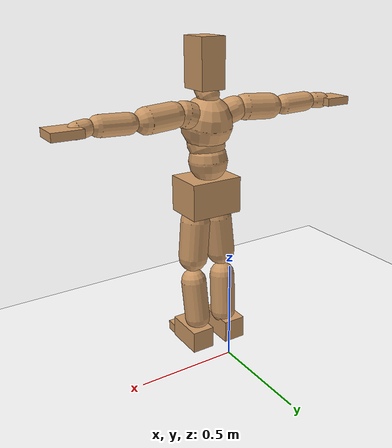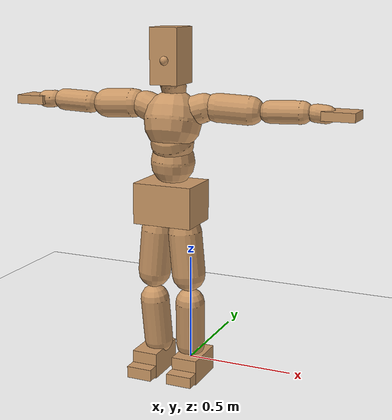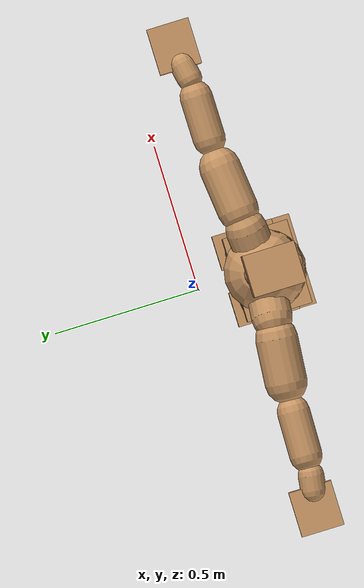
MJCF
<mujoco model="humanoid">
  <option integrator="implicitfast" />

  <visual>
    <global offwidth="1280" offheight="960" />
    <headlight active="1" ambient="0.34 0.34 0.34" diffuse="0.5 0.5 0.5" />
  </visual>

  <default>
    <joint damping="2" stiffness="2" armature="0.01" limited="true" solimplimit="0 .99 .01" />
    <geom condim="1" friction="0.7 0.005 0.0001" solimp=".99 .99 .003" solref="0.015 1" margin="0.001" rgba="0.8 0.6 .4 1" />
    <default class="smplcontact">
      <geom condim="3" friction="1. 0.005 0.0001" solref="0.015 1" solimp="0.98 0.98 0.001" priority="1" />
    </default>
    <default class="stiff_medium">
      <joint stiffness="10" />
    </default>
    <default class="stiff_medium_higher">
      <joint stiffness="50" />
    </default>
    <default class="stiff_high">
      <joint stiffness="100" />
    </default>
  </default>

  <asset>
    <texture type="skybox" builtin="gradient" rgb1="0.99 0.99 0.99" rgb2="0.608 0.828 0.892" width="100" />
    <texture builtin="flat" height="1278" mark="cross" markrgb="1 1 1" name="texgeom" random="0.01" rgb1="0.8 0.6 0.4" rgb2="0.8 0.6 0.4" type="cube" width="127" />
    <texture name="texplane" type="2d" builtin="checker" markrgb="1 1 1" rgb1="0.756 0.772 0.76" rgb2="0.6 0.6 0.6" width="100" height="100" />
    <material name="MatPlane" reflectance="0.5" texture="texplane" texrepeat="1 1" texuniform="true" />
    <material name="geom" texture="texgeom" texuniform="true" />
  </asset>

  <worldbody>
    <light name="tracking_light" pos="0 0 7" dir="0 0 -1" directional="true" cutoff="100" exponent="1" diffuse="1 1 1" specular="0.1 0.1 0.1" mode="trackcom" />
    <camera name="back" pos="0 3 2.4" xyaxes="-1 0 0 0 -1 2" mode="trackcom" />
    <camera name="side" pos="-3 0 2.4" xyaxes="0 -1 0 1 0 2" mode="trackcom" />
    <camera name="front_side" pos="-2.8 -2.8 0.8" xyaxes="0.5 -0.5 0 0.1 0.1 1" mode="trackcom" />
    <geom condim="3" name="floor" pos="0 0 0" rgba="1 1 1 1" size="100 100 .2" type="plane" material="MatPlane" />
    <body name="Pelvis" pos="-0.0018 -0.2233 0.830535" euler="90 0 0">
      <site name="Pelvis" size="0.01" />
      <freejoint name="Pelvis" />
      <geom type="box" pos="-0.0000 -0.0121 -0.0055" size="0.134961 0.0911525 0.104788" quat="1.0000 0.0000 0.0000 0.0000" density="3165.830099" name="Pelvis" />
      <body name="L_Hip" pos="0.0603816 -0.0794083 -0.00590784">
        <joint name="L_Hip_x" type="hinge" pos="0 0 0" axis="1 0 0" stiffness="12.730054659090907" range="-160.0 22.92" class="stiff_medium" damping="18.246935545324636" armature="0.011624307487249798"/>
        <joint name="L_Hip_y" type="hinge" pos="0 0 0" axis="0 1 0" stiffness="12.81121375" range="-70.0 70.0" class="stiff_medium" damping="15.082547182217159" armature="0.01775657123071627"/>
        <joint name="L_Hip_z" type="hinge" pos="0 0 0" axis="0 0 1" stiffness="12.794402840909092" range="-28.65 90.0" class="stiff_medium" damping="12.190302970271997" armature="0.01161472624825243"/>
        <geom type="capsule" density="2040.816327" fromto="0.00599472 -0.06516 -0.00078192 0.0238051 -0.260814 -0.00312768" size="0.0749562" name="L_Hip" />
        <body name="L_Knee" pos="0.0297998 -0.325974 -0.0039096">
          <joint name="L_Knee_x" type="hinge" pos="0 0 0" axis="1 0 0" range="-5.16 171.89" damping="10.288067353896485" armature="0.012447416442484817" stiffness="2.657286613636364"/>
          <joint name="L_Knee_y" type="hinge" pos="0 0 0" axis="0 1 0" range="-4.58 6.88" damping="12.535989799537198" armature="0.018965358207470015" stiffness="2.5894422632135305"/>
          <joint name="L_Knee_z" type="hinge" pos="0 0 0" axis="0 0 1" range="-6.88 4.58" damping="10.30329535323837" armature="0.012397275580091351" stiffness="2.675938113636364"/>
          <geom type="capsule" density="1234.567901" fromto="-0.00234576 -0.0691565 -0.00755856 -0.00946992 -0.276626 -0.030408" size="0.0659371" name="L_Knee" />
          <body name="L_Ankle" pos="-0.0118157 -0.345782 -0.0379666">
            <joint name="L_Ankle_x" type="hinge" pos="0 0 0" axis="1 0 0" range="-45.84 45.84" class="stiff_medium" damping="10.15006569048589" armature="0.018193583883448418" stiffness="15.729573522727271"/>
            <joint name="L_Ankle_y" type="hinge" pos="0 0 0" axis="0 1 0" range="-74.48 22.92" class="stiff_medium" damping="5.119977927913586" armature="0.01851727239653834" stiffness="15.72956284090909"/>
            <joint name="L_Ankle_z" type="hinge" pos="0 0 0" axis="0 0 1" range="-4.58 4.58" class="stiff_medium" damping="10.80999302728728" armature="0.020636307963194236" stiffness="15.729551022727271"/>
            <geom type="box" pos="0.020243 -0.0207643 0.021025" size="0.058868 0.0565523 0.103598" quat="1.0000 0.0000 0.0000 0.0000" density="449.071558" name="L_Ankle" class="smplcontact" />
            <body name="L_Toe" pos="0.0229363 -0.048479 0.103648">
              <joint name="L_Toe_x" type="hinge" pos="0 0 0" axis="1 0 0" range="-91.67 22.92" armature="0.021865073236122932" damping="3.7090612900954496" stiffness="3.1459157500000003"/>
              <joint name="L_Toe_y" type="hinge" pos="0 0 0" axis="0 1 0" range="-4.58 4.58" armature="0.02335082628687281" damping="3.833007451056817" stiffness="3.145915681818182"/>
              <joint name="L_Toe_z" type="hinge" pos="0 0 0" axis="0 0 1" range="-4.58 4.58" armature="0.026354954439327796" damping="4.072111807157371" stiffness="3.145916"/>
              <geom type="box" pos="-0.0026064 0.0047784 0.0215462" size="0.0582586 0.024376 0.0604525" quat="1.0000 0.0000 0.0000 0.0000" density="423.206892" name="L_Toe" class="smplcontact" />
            </body>
          </body>
        </body>
      </body>
      <body name="R_Hip" pos="-0.0588178 -0.0786264 -0.00373584">
        <joint name="R_Hip_x" type="hinge" pos="0 0 0" axis="1 0 0" stiffness="12.730054659090907" range="-160.0 22.92" class="stiff_medium" damping="18.246935545324636" armature="0.011624307487249798"/>
        <joint name="R_Hip_y" type="hinge" pos="0 0 0" axis="0 1 0" stiffness="12.81121375" range="-70.0 70.0" class="stiff_medium" damping="15.082547182217159" armature="0.01775657123071627"/>
        <joint name="R_Hip_z" type="hinge" pos="0 0 0" axis="0 0 1" stiffness="12.794402840909092" range="-90.0 28.65" class="stiff_medium" damping="12.190302970271997" armature="0.01161472624825243"/>
        <geom type="capsule" density="2040.816327" fromto="-0.00668976 -0.0664632 -0.00156384 -0.0265853 -0.26594 -0.00616848" size="0.0738593" name="R_Hip" />
        <body name="R_Knee" pos="-0.033275 -0.332403 -0.00773232">
          <joint name="R_Knee_x" type="hinge" pos="0 0 0" axis="1 0 0" range="-5.16 171.89" damping="10.288067353896485" armature="0.012447416442484817" stiffness="2.657286613636364"/>
          <joint name="R_Knee_y" type="hinge" pos="0 0 0" axis="0 1 0" range="-6.88 4.58" damping="12.535989799537198" armature="0.018965358207470015" stiffness="2.5894422632135305"/>
          <joint name="R_Knee_z" type="hinge" pos="0 0 0" axis="0 0 1" range="-4.58 6.88" damping="10.30329535323837" armature="0.012397275580091351" stiffness="2.675938113636364"/>
          <geom type="capsule" density="1234.567901" fromto="0.00278016 -0.0692434 -0.0073848 0.0109469 -0.276887 -0.0293654" size="0.0659371" name="R_Knee" />
          <body name="R_Ankle" pos="0.013727 -0.34613 -0.0367502">
            <joint name="R_Ankle_x" type="hinge" pos="0 0 0" axis="1 0 0" range="-45.84 45.84" class="stiff_medium" damping="10.15006569048589" armature="0.018193583883448418" stiffness="15.729573522727271"/>
            <joint name="R_Ankle_y" type="hinge" pos="0 0 0" axis="0 1 0" range="-22.92 74.48" class="stiff_medium" damping="5.119977927913586" armature="0.01851727239653834" stiffness="15.72956284090909"/>
            <joint name="R_Ankle_z" type="hinge" pos="0 0 0" axis="0 0 1" range="-4.58 4.58" class="stiff_medium" damping="10.80999302728728" armature="0.020636307963194236" stiffness="15.729551022727271"/>
            <geom type="box" pos="-0.0184186 -0.0151171 0.0222413" size="0.058868 0.0582586 0.105426" quat="1.0000 0.0000 0.0000 0.0000" density="434.700981" name="R_Ankle" class="smplcontact" />
            <body name="R_Toe" pos="-0.0220675 -0.0417893 0.107123">
              <joint name="R_Toe_x" type="hinge" pos="0 0 0" axis="1 0 0" range="-91.67 22.92" armature="0.021865073236122932" damping="3.7090612900954496" stiffness="3.1459157500000003"/>
              <joint name="R_Toe_y" type="hinge" pos="0 0 0" axis="0 1 0" range="-4.58 4.58" armature="0.02335082628687281" damping="3.833007451056817" stiffness="3.145915681818182"/>
              <joint name="R_Toe_z" type="hinge" pos="0 0 0" axis="0 0 1" range="-4.58 4.58" armature="0.026354954439327796" damping="4.072111807157371" stiffness="3.145916"/>
              <geom type="box" pos="0.00364896 0.0039096 0.0197218" size="0.0583805 0.0263261 0.0600868" quat="1.0000 0.0000 0.0000 0.0000" density="407.384095" name="R_Toe" class="smplcontact" />
            </body>
          </body>
        </body>
      </body>
      <body name="Torso" pos="-0.002325 0.10137 -0.024831">
        <joint name="Torso_x" type="hinge" pos="0 0 0" axis="1 0 0" range="-25.78 57.3" class="stiff_medium" damping="20.851142077225063" armature="0.013180276774366206" stiffness="14.660630454545453"/>
        <joint name="Torso_y" type="hinge" pos="0 0 0" axis="0 1 0" range="-57.3 57.3" class="stiff_high" damping="27.589531773373576" armature="0.013003659765092653" stiffness="146.34000681818185"/>
        <joint name="Torso_z" type="hinge" pos="0 0 0" axis="0 0 1" range="-34.38 34.38" class="stiff_high" damping="27.912221741668624" armature="0.012892023553655896" stiffness="151.08026279069767"/>
        <geom type="capsule" density="2040.816327" fromto="0.002325 0.056544 0.000465 0.00279 0.069099 0.000558" size="0.0970862" name="Torso" />
        <body name="Spine" pos="0.005115 0.125736 0.001023">
          <joint name="Spine_x" type="hinge" pos="0 0 0" axis="1 0 0" stiffness="14.172395454545457" range="-25.78 57.3" class="stiff_medium" damping="20.109726046249918" armature="0.012681964361313556"/>
          <joint name="Spine_y" type="hinge" pos="0 0 0" axis="0 1 0" stiffness="14.292654999999998" range="-57.3 57.3" class="stiff_high" damping="10.858198932356316" armature="0.01288910327264947"/>
          <joint name="Spine_z" type="hinge" pos="0 0 0" axis="0 0 1" stiffness="28.096716363636357" range="-34.38 34.38" class="stiff_high" damping="15.884498308050267" armature="0.012472655920242886"/>
          <geom type="capsule" density="2040.816327" fromto="0.000651 0.022134 0.010602 0.000744 0.027063 0.01302" size="0.0953187" name="Spine" />
          <body name="Chest" pos="0.001395 0.049197 0.023622">
            <joint name="Chest_x" type="hinge" pos="0 0 0" axis="1 0 0" stiffness="13.368847209302324" range="-25.78 57.3" class="stiff_medium" damping="19.366819659488513" armature="0.012469244450707984"/>
            <joint name="Chest_y" type="hinge" pos="0 0 0" axis="0 1 0" stiffness="13.638611395348835" range="-57.3 57.3" class="stiff_high" damping="10.56671910633892" armature="0.012791756872691257"/>
            <joint name="Chest_z" type="hinge" pos="0 0 0" axis="0 0 1" stiffness="27.138642727272728" range="-34.38 34.38" class="stiff_high" damping="15.534197528291362" armature="0.012349717587871576"/>
            <geom type="capsule" density="2040.816327" fromto="-0.000837 0.063426 -0.016089 -0.00093 0.077469 -0.019716" size="0.126502" name="Chest" />
            <body name="Neck" pos="-0.002604 0.198927 -0.039897">
              <joint name="Neck_x" type="hinge" pos="0 0 0" axis="1 0 0" range="-28.65 57.3" class="stiff_medium_higher" damping="11.71978159887853" armature="0.011696088466404339" stiffness="58.717613636363645"/>
              <joint name="Neck_y" type="hinge" pos="0 0 0" axis="0 1 0" range="-40.11 40.11" class="stiff_medium_higher" damping="12.112992726312664" armature="0.012562238227505382" stiffness="58.399064772727286"/>
              <joint name="Neck_z" type="hinge" pos="0 0 0" axis="0 0 1" range="-40.11 40.11" class="stiff_medium_higher" damping="11.608623417998206" armature="0.011676012597013865" stiffness="57.70811590909092"/>
              <geom type="capsule" density="1000" fromto="0.00093 0.01209 0.009579 0.003813 0.04836 0.038223" size="0.055045" name="Neck" />
              <body name="Head" pos="0.0052 0.065 0.0513">
                <joint name="Head_x" type="hinge" pos="0 0 0" axis="1 0 0" range="-28.65 57.3" class="stiff_medium_higher" damping="2.3197570263102802" armature="0.011829635199473275" stiffness="56.86220000000001"/>
                <joint name="Head_y" type="hinge" pos="0 0 0" axis="0 1 0" range="-40.11 40.11" class="stiff_medium_higher" damping="2.369610777429949" armature="0.012343558718516357" stiffness="56.86220000000001"/>
                <joint name="Head_z" type="hinge" pos="0 0 0" axis="0 0 1" range="-40.11 40.11" class="stiff_medium_higher" damping="2.317260807571835" armature="0.011804189888688072" stiffness="56.86220000000001"/>
                <geom type="box" pos="-0.0042 0.0876 -0.0116" size="0.0632543 0.120455 0.0793288" quat="1.0000 0.0000 0.0000 0.0000" density="1018.069894" name="Head" />
                <geom type="capsule" name="nose" size="0.020876 0.010438" pos="0 0.07 0.05" quat="1 0 0 0" mass="0" contype="0" conaffinity="0" />
              </body>
            </body>
            <body name="L_Thorax" pos="0.070526 0.108922 -0.0305195">
              <joint name="L_Thorax_x" type="hinge" pos="0 0 0" axis="1 0 0" range="-10.89 4.58" class="stiff_medium_higher" damping="30.253241042143813" armature="0.01684927813350261" stiffness="67.90043068181818"/>
              <joint name="L_Thorax_y" type="hinge" pos="0 0 0" axis="0 1 0" range="-28.65 17.19" class="stiff_medium_higher" damping="25.885201958770235" armature="0.01243591468754261" stiffness="67.34965795454546"/>
              <joint name="L_Thorax_z" type="hinge" pos="0 0 0" axis="0 0 1" range="-31.51 40.11" class="stiff_medium_higher" damping="25.882958699735127" armature="0.012431891969336561" stiffness="67.3597744318182"/>
              <geom type="capsule" density="1000" fromto="0.016289 0.0054595 -0.001611 0.065156 0.021838 -0.0063545" size="0.0634995" name="L_Thorax" />
              <body name="L_Shoulder" pos="0.081445 0.0272975 -0.0079655">
                <joint name="L_Shoulder_x" type="hinge" pos="0 0 0" axis="1 0 0" range="-97.4 97.4" class="stiff_medium" damping="9.523137093440731" armature="0.018489090345789386" stiffness="13.625173068181816"/>
                <joint name="L_Shoulder_y" type="hinge" pos="0 0 0" axis="0 1 0" range="-108.86 80.21" class="stiff_medium" damping="7.8270352336452405" armature="0.012558694071103271" stiffness="13.55025897727273"/>
                <joint name="L_Shoulder_z" type="hinge" pos="0 0 0" axis="0 0 1" range="-97.4 85.94" class="stiff_medium" damping="7.8155356907294244" armature="0.012553143923826032" stiffness="13.51644534090909"/>
                <geom type="capsule" density="1000" fromto="0.0464505 -0.002327 -0.0049225 0.185891 -0.009129 -0.01969" size="0.063012" name="L_Shoulder" />
                <body name="L_Elbow" pos="0.232342 -0.011456 -0.0246125">
                  <joint name="L_Elbow_x" type="hinge" pos="0 0 0" axis="1 0 0" range="-17.19 4.58" damping="8.624154649748" armature="0.0212946928886078" stiffness="2.794162613636363"/>
                  <joint name="L_Elbow_y" type="hinge" pos="0 0 0" axis="0 1 0" range="-180.0 17.19" damping="6.7807304597054845" armature="0.013165257262778816" stiffness="2.793917636363637"/>
                  <joint name="L_Elbow_z" type="hinge" pos="0 0 0" axis="0 0 1" range="-100.84 4.58" damping="6.774825505514592" armature="0.01313611769920646" stiffness="2.7952405227272727"/>
                  <geom type="capsule" density="1000" fromto="0.044571 0.001611 -0.000179 0.178463 0.006444 -0.0008055" size="0.0493614" name="L_Elbow" />
                  <body name="L_Wrist" pos="0.223034 0.008055 -0.001074">
                    <joint name="L_Wrist_x" type="hinge" pos="0 0 0" axis="1 0 0" range="-180.0 22.92" armature="0.022532602532719406" damping="3.730509921233484" stiffness="3.0881262499999997"/>
                    <joint name="L_Wrist_y" type="hinge" pos="0 0 0" axis="0 1 0" range="-17.19 17.19" armature="0.015547012935291983" damping="3.085043160308426" stiffness="3.0608745681818186"/>
                    <joint name="L_Wrist_z" type="hinge" pos="0 0 0" axis="0 0 1" range="-22.92 22.92" armature="0.015146812838443924" damping="3.049985473223811" stiffness="3.0707487727272724"/>
                    <geom type="capsule" density="1000" fromto="0.015036 -0.001432 -0.002685 0.060144 -0.0058175 -0.01074" size="0.0387578" name="L_Wrist" class="smplcontact" />
                    <body name="L_Hand" pos="0.07518 -0.007339 -0.0133355">
                      <joint name="L_Hand_x" type="hinge" pos="0 0 0" axis="1 0 0" range="-17.19 17.19" armature="0.026354492492649113" damping="4.133016142729844" stiffness="3.24078"/>
                      <joint name="L_Hand_y" type="hinge" pos="0 0 0" axis="0 1 0" range="-51.57 51.57" armature="0.020365426678391065" damping="3.6331767771688788" stiffness="3.24078"/>
                      <joint name="L_Hand_z" type="hinge" pos="0 0 0" axis="0 0 1" range="-91.67 91.67" armature="0.01876895547591512" damping="3.4878662682859902" stiffness="3.24078"/>
                      <geom type="box" pos="0.0441235 0.000895 -0.005191" size="0.0712998 0.019257 0.0655714" quat="1.0000 0.0000 0.0000 0.0000" density="400.552564" name="L_Hand" class="smplcontact" />
                    </body>
                  </body>
                </body>
              </body>
            </body>
            <body name="R_Thorax" pos="-0.073211 0.106326 -0.034547">
              <joint name="R_Thorax_x" type="hinge" pos="0 0 0" axis="1 0 0" range="-10.89 4.58" class="stiff_medium_higher" damping="30.253241042143813" armature="0.01684927813350261" stiffness="67.90043068181818"/>
              <joint name="R_Thorax_y" type="hinge" pos="0 0 0" axis="0 1 0" range="-17.19 28.65" class="stiff_medium_higher" damping="25.885201958770235" armature="0.01243591468754261" stiffness="67.34965795454546"/>
              <joint name="R_Thorax_z" type="hinge" pos="0 0 0" axis="0 0 1" range="-40.11 31.51" class="stiff_medium_higher" damping="25.882958699735127" armature="0.012431891969336561" stiffness="67.3597744318182"/>
              <geom type="capsule" density="1000" fromto="-0.017184 0.0058175 -0.001611 -0.068736 0.02327 -0.0065335" size="0.0622807" name="R_Thorax" />
              <body name="R_Shoulder" pos="-0.08592 0.029177 -0.0081445">
                <joint name="R_Shoulder_x" type="hinge" pos="0 0 0" axis="1 0 0" range="-97.4 97.4" class="stiff_medium" damping="9.523137093440731" armature="0.018489090345789386" stiffness="13.625173068181816"/>
                <joint name="R_Shoulder_y" type="hinge" pos="0 0 0" axis="0 1 0" range="-80.21 108.86" class="stiff_medium" damping="7.8270352336452405" armature="0.012558694071103271" stiffness="13.55025897727273"/>
                <joint name="R_Shoulder_z" type="hinge" pos="0 0 0" axis="0 0 1" range="-85.94 97.4" class="stiff_medium" damping="7.8155356907294244" armature="0.012553143923826032" stiffness="13.51644534090909"/>
                <geom type="capsule" density="1000" fromto="-0.0453765 -0.0024165 -0.0038485 -0.181685 -0.0095765 -0.0153045" size="0.0647183" name="R_Shoulder" />
                <body name="R_Elbow" pos="-0.227061 -0.0119035 -0.019153">
                  <joint name="R_Elbow_x" type="hinge" pos="0 0 0" axis="1 0 0" range="-17.19 4.58" damping="8.624154649748" armature="0.0212946928886078" stiffness="2.794162613636363"/>
                  <joint name="R_Elbow_y" type="hinge" pos="0 0 0" axis="0 1 0" range="-17.19 180.0" damping="6.7807304597054845" armature="0.013165257262778816" stiffness="2.793917636363637"/>
                  <joint name="R_Elbow_z" type="hinge" pos="0 0 0" axis="0 0 1" range="-4.58 100.84" damping="6.774825505514592" armature="0.01313611769920646" stiffness="2.7952405227272727"/>
                  <geom type="capsule" density="1000" fromto="-0.0457345 0.001432 -0.0009845 -0.182759 0.005549 -0.003938" size="0.049727" name="R_Elbow" />
                  <body name="R_Wrist" pos="-0.228494 0.006981 -0.005012">
                    <joint name="R_Wrist_x" type="hinge" pos="0 0 0" axis="1 0 0" range="-180.0 22.92" armature="0.022532602532719406" damping="3.730509921233484" stiffness="3.0881262499999997"/>
                    <joint name="R_Wrist_y" type="hinge" pos="0 0 0" axis="0 1 0" range="-17.19 17.19" armature="0.015547012935291983" damping="3.085043160308426" stiffness="3.0608745681818186"/>
                    <joint name="R_Wrist_z" type="hinge" pos="0 0 0" axis="0 0 1" range="-22.92 22.92" armature="0.015146812838443924" damping="3.049985473223811" stiffness="3.0707487727272724"/>
                    <geom type="capsule" density="1000" fromto="-0.0151255 -0.001074 -0.0018795 -0.0605915 -0.0043855 -0.0074285" size="0.0397329" name="R_Wrist" class="smplcontact" />
                    <body name="R_Hand" pos="-0.075717 -0.0054595 -0.0092185">
                      <joint name="R_Hand_x" type="hinge" pos="0 0 0" axis="1 0 0" range="-17.19 17.19" armature="0.026354492492649113" damping="4.133016142729844" stiffness="3.24078"/>
                      <joint name="R_Hand_y" type="hinge" pos="0 0 0" axis="0 1 0" range="-51.57 51.57" armature="0.020365426678391065" damping="3.6331767771688788" stiffness="3.24078"/>
                      <joint name="R_Hand_z" type="hinge" pos="0 0 0" axis="0 0 1" range="-91.67 91.67" armature="0.01876895547591512" damping="3.4878662682859902" stiffness="3.24078"/>
                      <geom type="box" pos="-0.041349 -0.0008055 -0.0070705" size="0.0693497 0.0199883 0.0665465" quat="1.0000 0.0000 0.0000 0.0000" density="403.679611" name="R_Hand" class="smplcontact" />
                    </body>
                  </body>
                </body>
              </body>
            </body>
          </body>
        </body>
      </body>
    </body>
  </worldbody>
  <actuator>
    <general name="L_Hip_x" joint="L_Hip_x" biastype="affine" gainprm="365.7727421159009" biasprm="-274.1095970328433 -229.14098386363634 -2.432924739376618" ctrllimited="true" ctrlrange="-1 1" forcerange="-458.2819677272727 458.2819677272727" />
    <general name="L_Hip_y" joint="L_Hip_y" biastype="affine" gainprm="281.7333050039798" biasprm="0.0 -230.60184750000002 -3.0165094364434317" ctrllimited="true" ctrlrange="-1 1" forcerange="-461.20369500000004 461.20369500000004" />
    <general name="L_Hip_z" joint="L_Hip_z" biastype="affine" gainprm="238.4556626992957" biasprm="123.29755504931975 -230.29925113636364 -2.4380605940543996" ctrllimited="true" ctrlrange="-1 1" forcerange="-460.5985022727273 460.5985022727273" />
    <general name="L_Knee_x" joint="L_Knee_x" biastype="affine" gainprm="369.5083119980992" biasprm="347.9701827700823 -239.15579522727276 -2.5720168384741213" ctrllimited="true" ctrlrange="-1 1" forcerange="-478.3115904545455 478.3115904545455" />
    <general name="L_Knee_y" joint="L_Knee_y" biastype="affine" gainprm="23.30669704623378" biasprm="4.677609354828769 -233.04980368921775 -3.1339974498842995" ctrllimited="true" ctrlrange="-1 1" forcerange="-466.0996073784355 466.0996073784355" />
    <general name="L_Knee_z" joint="L_Knee_z" biastype="affine" gainprm="24.08521704268256" biasprm="-4.833856823575035 -240.83443022727275 -2.5758238383095926" ctrllimited="true" ctrlrange="-1 1" forcerange="-481.6688604545455 481.6688604545455" />
    <general name="L_Ankle_x" joint="L_Ankle_x" biastype="affine" gainprm="113.26127173214641" biasprm="0.0 -141.56616170454544 -3.3833552301619636" ctrllimited="true" ctrlrange="-1 1" forcerange="-283.1323234090909 283.1323234090909" />
    <general name="L_Ankle_y" joint="L_Ankle_y" biastype="affine" gainprm="120.32766552371088" biasprm="-63.69706811501573 -141.5660655681818 -3.4133186186090576" ctrllimited="true" ctrlrange="-1 1" forcerange="-283.1321311363636 283.1321311363636" />
    <general name="L_Ankle_z" joint="L_Ankle_z" biastype="affine" gainprm="11.31622780363387" biasprm="0.0 -141.56595920454544 -3.6033310090957604" ctrllimited="true" ctrlrange="-1 1" forcerange="-283.1319184090909 283.1319184090909" />
    <general name="L_Toe_x" joint="L_Toe_x" biastype="affine" gainprm="113.25142618547338" biasprm="-67.94690243696041 -113.25296700000001 -1.48362451603818" ctrllimited="true" ctrlrange="-1 1" forcerange="-226.50593400000002 226.50593400000002" />
    <general name="L_Toe_y" joint="L_Toe_y" biastype="affine" gainprm="9.05299800484864" biasprm="0.0 -113.25296454545455 -1.533202980422727" ctrllimited="true" ctrlrange="-1 1" forcerange="-226.5059290909091 226.5059290909091" />
    <general name="L_Toe_z" joint="L_Toe_z" biastype="affine" gainprm="9.052998920480098" biasprm="0.0 -113.252976 -1.6288447228629483" ctrllimited="true" ctrlrange="-1 1" forcerange="-226.505952 226.505952" />
    <general name="R_Hip_x" joint="R_Hip_x" biastype="affine" gainprm="365.7727421159009" biasprm="-274.1095970328433 -229.14098386363634 -2.432924739376618" ctrllimited="true" ctrlrange="-1 1" forcerange="-458.2819677272727 458.2819677272727" />
    <general name="R_Hip_y" joint="R_Hip_y" biastype="affine" gainprm="281.7333050039798" biasprm="0.0 -230.60184750000002 -3.0165094364434317" ctrllimited="true" ctrlrange="-1 1" forcerange="-461.20369500000004 461.20369500000004" />
    <general name="R_Hip_z" joint="R_Hip_z" biastype="affine" gainprm="238.4556626992957" biasprm="-123.29755504931975 -230.29925113636364 -2.4380605940543996" ctrllimited="true" ctrlrange="-1 1" forcerange="-460.5985022727273 460.5985022727273" />
    <general name="R_Knee_x" joint="R_Knee_x" biastype="affine" gainprm="369.5083119980992" biasprm="347.9701827700823 -239.15579522727276 -2.5720168384741213" ctrllimited="true" ctrlrange="-1 1" forcerange="-478.3115904545455 478.3115904545455" />
    <general name="R_Knee_y" joint="R_Knee_y" biastype="affine" gainprm="23.30669704623378" biasprm="-4.677609354828769 -233.04980368921775 -3.1339974498842995" ctrllimited="true" ctrlrange="-1 1" forcerange="-466.0996073784355 466.0996073784355" />
    <general name="R_Knee_z" joint="R_Knee_z" biastype="affine" gainprm="24.08521704268256" biasprm="4.833856823575035 -240.83443022727275 -2.5758238383095926" ctrllimited="true" ctrlrange="-1 1" forcerange="-481.6688604545455 481.6688604545455" />
    <general name="R_Ankle_x" joint="R_Ankle_x" biastype="affine" gainprm="113.26127173214641" biasprm="0.0 -141.56616170454544 -3.3833552301619636" ctrllimited="true" ctrlrange="-1 1" forcerange="-283.1323234090909 283.1323234090909" />
    <general name="R_Ankle_y" joint="R_Ankle_y" biastype="affine" gainprm="120.32766552371088" biasprm="63.69706811501573 -141.5660655681818 -3.4133186186090576" ctrllimited="true" ctrlrange="-1 1" forcerange="-283.1321311363636 283.1321311363636" />
    <general name="R_Ankle_z" joint="R_Ankle_z" biastype="affine" gainprm="11.31622780363387" biasprm="0.0 -141.56595920454544 -3.6033310090957604" ctrllimited="true" ctrlrange="-1 1" forcerange="-283.1319184090909 283.1319184090909" />
    <general name="R_Toe_x" joint="R_Toe_x" biastype="affine" gainprm="113.25142618547338" biasprm="-67.94690243696041 -113.25296700000001 -1.48362451603818" ctrllimited="true" ctrlrange="-1 1" forcerange="-226.50593400000002 226.50593400000002" />
    <general name="R_Toe_y" joint="R_Toe_y" biastype="affine" gainprm="9.05299800484864" biasprm="0.0 -113.25296454545455 -1.533202980422727" ctrllimited="true" ctrlrange="-1 1" forcerange="-226.5059290909091 226.5059290909091" />
    <general name="R_Toe_z" joint="R_Toe_z" biastype="affine" gainprm="9.052998920480098" biasprm="0.0 -113.252976 -1.6288447228629483" ctrllimited="true" ctrlrange="-1 1" forcerange="-226.505952 226.505952" />
    <general name="Torso_x" joint="Torso_x" biastype="affine" gainprm="255.09840798354713" biasprm="96.78264106453302 -351.85513090909086 -5.5603045539266835" ctrllimited="true" ctrlrange="-1 1" forcerange="-527.7826963636363 527.7826963636363" />
    <general name="Torso_y" joint="Torso_y" biastype="affine" gainprm="351.2418874245582" biasprm="0.0 -351.2160163636364 -5.517906354674715" ctrllimited="true" ctrlrange="-1 1" forcerange="-526.8240245454547 526.8240245454547" />
    <general name="Torso_z" joint="Torso_z" biastype="affine" gainprm="217.5716038655117" biasprm="0.0 -362.5926306976744 -5.582444348333725" ctrllimited="true" ctrlrange="-1 1" forcerange="-543.8889460465116 543.8889460465116" />
    <general name="Spine_x" joint="Spine_x" biastype="affine" gainprm="246.60300448722404" biasprm="93.55954142317404 -340.13749090909096 -5.3625936123333116" ctrllimited="true" ctrlrange="-1 1" forcerange="-510.20623636363644 510.20623636363644" />
    <general name="Spine_y" joint="Spine_y" biastype="affine" gainprm="343.0489876049617" biasprm="0.0 -343.02371999999997 -5.429099466178158" ctrllimited="true" ctrlrange="-1 1" forcerange="-514.53558 514.53558" />
    <general name="Spine_z" joint="Spine_z" biastype="affine" gainprm="202.31125924964712" biasprm="0.0 -337.1605963636363 -5.294832769350089" ctrllimited="true" ctrlrange="-1 1" forcerange="-505.74089454545447 505.74089454545447" />
    <general name="Chest_x" joint="Chest_x" biastype="affine" gainprm="232.62107657934598" biasprm="88.25489087362763 -320.85233302325577 -5.1644852425302705" ctrllimited="true" ctrlrange="-1 1" forcerange="-481.2784995348836 481.2784995348836" />
    <general name="Chest_y" joint="Chest_y" biastype="affine" gainprm="327.35078482702573" biasprm="0.0 -327.3266734883721 -5.28335955316946" ctrllimited="true" ctrlrange="-1 1" forcerange="-490.9900102325581 490.9900102325581" />
    <general name="Chest_z" joint="Chest_z" biastype="affine" gainprm="195.4126209419524" biasprm="0.0 -325.66371272727275 -5.178065842763787" ctrllimited="true" ctrlrange="-1 1" forcerange="-488.4955690909091 488.4955690909091" />
    <general name="Neck_x" joint="Neck_x" biastype="affine" gainprm="31.709846983084073" biasprm="10.569948994361358 -42.27668181818182 -0.9375825279102824" ctrllimited="true" ctrlrange="-1 1" forcerange="-84.55336363636364 84.55336363636364" />
    <general name="Neck_y" joint="Neck_y" biastype="affine" gainprm="29.435296730703588" biasprm="0.0 -42.04732663636364 -0.9690394181050132" ctrllimited="true" ctrlrange="-1 1" forcerange="-84.09465327272729 84.09465327272729" />
    <general name="Neck_z" joint="Neck_z" biastype="affine" gainprm="29.08703285171803" biasprm="0.0 -41.54984345454546 -0.9286898734398567" ctrllimited="true" ctrlrange="-1 1" forcerange="-83.09968690909092 83.09968690909092" />
    <general name="Head_x" joint="Head_x" biastype="affine" gainprm="20.471899877584878" biasprm="6.823966625861626 -27.293856000000005 -0.9279028105241122" ctrllimited="true" ctrlrange="-1 1" forcerange="-54.58771200000001 54.58771200000001" />
    <general name="Head_y" joint="Head_y" biastype="affine" gainprm="19.107106552412553" biasprm="0.0 -27.293856000000005 -0.9478443109719796" ctrllimited="true" ctrlrange="-1 1" forcerange="-54.58771200000001 54.58771200000001" />
    <general name="Head_z" joint="Head_z" biastype="affine" gainprm="19.107106552412553" biasprm="0.0 -27.293856000000005 -0.9269043230287339" ctrllimited="true" ctrlrange="-1 1" forcerange="-54.58771200000001 54.58771200000001" />
    <general name="L_Thorax_x" joint="L_Thorax_x" biastype="affine" gainprm="21.999937969069123" biasprm="-8.973471789581527 -162.96103363636362 -2.4202592833715055" ctrllimited="true" ctrlrange="-1 1" forcerange="-325.92206727272725 325.92206727272725" />
    <general name="L_Thorax_y" joint="L_Thorax_y" biastype="affine" gainprm="64.6604342631856" biasprm="-16.1651085657964 -161.6391790909091 -2.070816156701619" ctrllimited="true" ctrlrange="-1 1" forcerange="-323.2783581818182 323.2783581818182" />
    <general name="L_Thorax_z" joint="L_Thorax_z" biastype="affine" gainprm="101.04005047084392" biasprm="12.132706423474696 -161.66345863636369 -2.0706366959788105" ctrllimited="true" ctrlrange="-1 1" forcerange="-323.32691727272737 323.32691727272737" />
    <general name="L_Shoulder_x" joint="L_Shoulder_x" biastype="affine" gainprm="111.17818741573966" biasprm="0.0 -65.4008307272727 -2.5395032249175284" ctrllimited="true" ctrlrange="-1 1" forcerange="-130.8016614545454 130.8016614545454" />
    <general name="L_Shoulder_y" joint="L_Shoulder_y" biastype="affine" gainprm="107.31460445869608" biasprm="-16.261508529865353 -65.04124309090909 -2.0872093956387308" ctrllimited="true" ctrlrange="-1 1" forcerange="-130.08248618181818 130.08248618181818" />
    <general name="L_Shoulder_z" joint="L_Shoulder_z" biastype="affine" gainprm="103.80262322406269" biasprm="-6.488371670927027 -64.87893763636364 -2.08414285086118" ctrllimited="true" ctrlrange="-1 1" forcerange="-129.7578752727273 129.7578752727273" />
    <general name="L_Elbow_x" joint="L_Elbow_x" biastype="affine" gainprm="19.10996885083905" biasprm="-11.069210253058358 -100.58985409090907 -1.37986474395968" ctrllimited="true" ctrlrange="-1 1" forcerange="-201.17970818181814 201.17970818181814" />
    <general name="L_Elbow_y" joint="L_Elbow_y" biastype="affine" gainprm="173.08058675766029" biasprm="-142.9040536031983 -100.58103490909093 -1.0849168735528776" ctrllimited="true" ctrlrange="-1 1" forcerange="-201.16206981818186 201.16206981818186" />
    <general name="L_Elbow_z" joint="L_Elbow_z" biastype="affine" gainprm="92.57464775560426" biasprm="-84.53078726004998 -100.62865881818182 -1.0839720808823348" ctrllimited="true" ctrlrange="-1 1" forcerange="-201.25731763636364 201.25731763636364" />
    <general name="L_Wrist_x" joint="L_Wrist_x" biastype="affine" gainprm="32.81092869189007" biasprm="-25.39887975025671 -18.528757499999998 -1.4922039684933937" ctrllimited="true" ctrlrange="-1 1" forcerange="-37.057514999999995 37.057514999999995" />
    <general name="L_Wrist_y" joint="L_Wrist_y" biastype="affine" gainprm="5.5099800656379845" biasprm="0.0 -18.365247409090912 -1.2340172641233704" ctrllimited="true" ctrlrange="-1 1" forcerange="-36.730494818181825 36.730494818181825" />
    <general name="L_Wrist_z" joint="L_Wrist_z" biastype="affine" gainprm="7.370339924060784" biasprm="0.0 -18.424492636363635 -1.2199941892895245" ctrllimited="true" ctrlrange="-1 1" forcerange="-36.84898527272727 36.84898527272727" />
    <general name="L_Hand_x" joint="L_Hand_x" biastype="affine" gainprm="5.8338336966631195" biasprm="0.0 -19.444679999999998 -1.6532064570919378" ctrllimited="true" ctrlrange="-1 1" forcerange="-38.889359999999996 38.889359999999996" />
    <general name="L_Hand_y" joint="L_Hand_y" biastype="affine" gainprm="17.501501089989354" biasprm="0.0 -19.444679999999998 -1.4532707108675516" ctrllimited="true" ctrlrange="-1 1" forcerange="-38.889359999999996 38.889359999999996" />
    <general name="L_Hand_z" joint="L_Hand_z" biastype="affine" gainprm="31.110385978656662" biasprm="0.0 -19.444679999999998 -1.3951465073143963" ctrllimited="true" ctrlrange="-1 1" forcerange="-38.889359999999996 38.889359999999996" />
    <general name="R_Thorax_x" joint="R_Thorax_x" biastype="affine" gainprm="21.999937969069123" biasprm="-8.973471789581527 -162.96103363636362 -2.4202592833715055" ctrllimited="true" ctrlrange="-1 1" forcerange="-325.92206727272725 325.92206727272725" />
    <general name="R_Thorax_y" joint="R_Thorax_y" biastype="affine" gainprm="64.6604342631856" biasprm="16.165108565796395 -161.6391790909091 -2.070816156701619" ctrllimited="true" ctrlrange="-1 1" forcerange="-323.2783581818182 323.2783581818182" />
    <general name="R_Thorax_z" joint="R_Thorax_z" biastype="affine" gainprm="101.04005047084392" biasprm="-12.132706423474696 -161.66345863636369 -2.0706366959788105" ctrllimited="true" ctrlrange="-1 1" forcerange="-323.32691727272737 323.32691727272737" />
    <general name="R_Shoulder_x" joint="R_Shoulder_x" biastype="affine" gainprm="111.17818741573966" biasprm="0.0 -65.4008307272727 -2.5395032249175284" ctrllimited="true" ctrlrange="-1 1" forcerange="-130.8016614545454 130.8016614545454" />
    <general name="R_Shoulder_y" joint="R_Shoulder_y" biastype="affine" gainprm="107.31460445869608" biasprm="16.261508529865353 -65.04124309090909 -2.0872093956387308" ctrllimited="true" ctrlrange="-1 1" forcerange="-130.08248618181818 130.08248618181818" />
    <general name="R_Shoulder_z" joint="R_Shoulder_z" biastype="affine" gainprm="103.80262322406269" biasprm="6.4883716709270125 -64.87893763636364 -2.08414285086118" ctrllimited="true" ctrlrange="-1 1" forcerange="-129.7578752727273 129.7578752727273" />
    <general name="R_Elbow_x" joint="R_Elbow_x" biastype="affine" gainprm="19.10996885083905" biasprm="-11.069210253058358 -100.58985409090907 -1.37986474395968" ctrllimited="true" ctrlrange="-1 1" forcerange="-201.17970818181814 201.17970818181814" />
    <general name="R_Elbow_y" joint="R_Elbow_y" biastype="affine" gainprm="173.08058675766029" biasprm="142.9040536031983 -100.58103490909093 -1.0849168735528776" ctrllimited="true" ctrlrange="-1 1" forcerange="-201.16206981818186 201.16206981818186" />
    <general name="R_Elbow_z" joint="R_Elbow_z" biastype="affine" gainprm="92.57464775560426" biasprm="84.53078726004996 -100.62865881818182 -1.0839720808823348" ctrllimited="true" ctrlrange="-1 1" forcerange="-201.25731763636364 201.25731763636364" />
    <general name="R_Wrist_x" joint="R_Wrist_x" biastype="affine" gainprm="32.81092869189007" biasprm="-25.39887975025671 -18.528757499999998 -1.4922039684933937" ctrllimited="true" ctrlrange="-1 1" forcerange="-37.057514999999995 37.057514999999995" />
    <general name="R_Wrist_y" joint="R_Wrist_y" biastype="affine" gainprm="5.5099800656379845" biasprm="0.0 -18.365247409090912 -1.2340172641233704" ctrllimited="true" ctrlrange="-1 1" forcerange="-36.730494818181825 36.730494818181825" />
    <general name="R_Wrist_z" joint="R_Wrist_z" biastype="affine" gainprm="7.370339924060784" biasprm="0.0 -18.424492636363635 -1.2199941892895245" ctrllimited="true" ctrlrange="-1 1" forcerange="-36.84898527272727 36.84898527272727" />
    <general name="R_Hand_x" joint="R_Hand_x" biastype="affine" gainprm="5.8338336966631195" biasprm="0.0 -19.444679999999998 -1.6532064570919378" ctrllimited="true" ctrlrange="-1 1" forcerange="-38.889359999999996 38.889359999999996" />
    <general name="R_Hand_y" joint="R_Hand_y" biastype="affine" gainprm="17.501501089989354" biasprm="0.0 -19.444679999999998 -1.4532707108675516" ctrllimited="true" ctrlrange="-1 1" forcerange="-38.889359999999996 38.889359999999996" />
    <general name="R_Hand_z" joint="R_Hand_z" biastype="affine" gainprm="31.110385978656662" biasprm="0.0 -19.444679999999998 -1.3951465073143963" ctrllimited="true" ctrlrange="-1 1" forcerange="-38.889359999999996 38.889359999999996" />
  </actuator>
  <contact>
    <exclude body1="Torso" body2="Chest" />
    <exclude body1="Head" body2="Chest" />
    <exclude body1="R_Knee" body2="R_Toe" />
    <exclude body1="R_Knee" body2="L_Ankle" />
    <exclude body1="R_Knee" body2="L_Toe" />
    <exclude body1="L_Knee" body2="L_Toe" />
    <exclude body1="L_Knee" body2="R_Ankle" />
    <exclude body1="L_Knee" body2="R_Toe" />
    <exclude body1="L_Shoulder" body2="Chest" />
    <exclude body1="R_Shoulder" body2="Chest" />
  </contact>
  <sensor>
    <framelinvel name="sensor_Pelvis_framelinvel" objtype="xbody" objname="Pelvis" />
    <framelinvel name="sensor_L_Hip_framelinvel" objtype="xbody" objname="L_Hip" />
    <framelinvel name="sensor_L_Knee_framelinvel" objtype="xbody" objname="L_Knee" />
    <framelinvel name="sensor_L_Ankle_framelinvel" objtype="xbody" objname="L_Ankle" />
    <framelinvel name="sensor_L_Toe_framelinvel" objtype="xbody" objname="L_Toe" />
    <framelinvel name="sensor_R_Hip_framelinvel" objtype="xbody" objname="R_Hip" />
    <framelinvel name="sensor_R_Knee_framelinvel" objtype="xbody" objname="R_Knee" />
    <framelinvel name="sensor_R_Ankle_framelinvel" objtype="xbody" objname="R_Ankle" />
    <framelinvel name="sensor_R_Toe_framelinvel" objtype="xbody" objname="R_Toe" />
    <framelinvel name="sensor_Torso_framelinvel" objtype="xbody" objname="Torso" />
    <framelinvel name="sensor_Spine_framelinvel" objtype="xbody" objname="Spine" />
    <framelinvel name="sensor_Chest_framelinvel" objtype="xbody" objname="Chest" />
    <framelinvel name="sensor_Neck_framelinvel" objtype="xbody" objname="Neck" />
    <framelinvel name="sensor_Head_framelinvel" objtype="xbody" objname="Head" />
    <framelinvel name="sensor_L_Thorax_framelinvel" objtype="xbody" objname="L_Thorax" />
    <framelinvel name="sensor_L_Shoulder_framelinvel" objtype="xbody" objname="L_Shoulder" />
    <framelinvel name="sensor_L_Elbow_framelinvel" objtype="xbody" objname="L_Elbow" />
    <framelinvel name="sensor_L_Wrist_framelinvel" objtype="xbody" objname="L_Wrist" />
    <framelinvel name="sensor_L_Hand_framelinvel" objtype="xbody" objname="L_Hand" />
    <framelinvel name="sensor_R_Thorax_framelinvel" objtype="xbody" objname="R_Thorax" />
    <framelinvel name="sensor_R_Shoulder_framelinvel" objtype="xbody" objname="R_Shoulder" />
    <framelinvel name="sensor_R_Elbow_framelinvel" objtype="xbody" objname="R_Elbow" />
    <framelinvel name="sensor_R_Wrist_framelinvel" objtype="xbody" objname="R_Wrist" />
    <framelinvel name="sensor_R_Hand_framelinvel" objtype="xbody" objname="R_Hand" />
    <frameangvel name="sensor_Pelvis_frameangvel" objtype="xbody" objname="Pelvis" />
    <frameangvel name="sensor_L_Hip_frameangvel" objtype="xbody" objname="L_Hip" />
    <frameangvel name="sensor_L_Knee_frameangvel" objtype="xbody" objname="L_Knee" />
    <frameangvel name="sensor_L_Ankle_frameangvel" objtype="xbody" objname="L_Ankle" />
    <frameangvel name="sensor_L_Toe_frameangvel" objtype="xbody" objname="L_Toe" />
    <frameangvel name="sensor_R_Hip_frameangvel" objtype="xbody" objname="R_Hip" />
    <frameangvel name="sensor_R_Knee_frameangvel" objtype="xbody" objname="R_Knee" />
    <frameangvel name="sensor_R_Ankle_frameangvel" objtype="xbody" objname="R_Ankle" />
    <frameangvel name="sensor_R_Toe_frameangvel" objtype="xbody" objname="R_Toe" />
    <frameangvel name="sensor_Torso_frameangvel" objtype="xbody" objname="Torso" />
    <frameangvel name="sensor_Spine_frameangvel" objtype="xbody" objname="Spine" />
    <frameangvel name="sensor_Chest_frameangvel" objtype="xbody" objname="Chest" />
    <frameangvel name="sensor_Neck_frameangvel" objtype="xbody" objname="Neck" />
    <frameangvel name="sensor_Head_frameangvel" objtype="xbody" objname="Head" />
    <frameangvel name="sensor_L_Thorax_frameangvel" objtype="xbody" objname="L_Thorax" />
    <frameangvel name="sensor_L_Shoulder_frameangvel" objtype="xbody" objname="L_Shoulder" />
    <frameangvel name="sensor_L_Elbow_frameangvel" objtype="xbody" objname="L_Elbow" />
    <frameangvel name="sensor_L_Wrist_frameangvel" objtype="xbody" objname="L_Wrist" />
    <frameangvel name="sensor_L_Hand_frameangvel" objtype="xbody" objname="L_Hand" />
    <frameangvel name="sensor_R_Thorax_frameangvel" objtype="xbody" objname="R_Thorax" />
    <frameangvel name="sensor_R_Shoulder_frameangvel" objtype="xbody" objname="R_Shoulder" />
    <frameangvel name="sensor_R_Elbow_frameangvel" objtype="xbody" objname="R_Elbow" />
    <frameangvel name="sensor_R_Wrist_frameangvel" objtype="xbody" objname="R_Wrist" />
    <frameangvel name="sensor_R_Hand_frameangvel" objtype="xbody" objname="R_Hand" />
    <subtreelinvel name="Chest_subtreelinvel" body="Chest" />
    <gyro name="Pelvis_gyro" site="Pelvis" />
  </sensor>
</mujoco>
